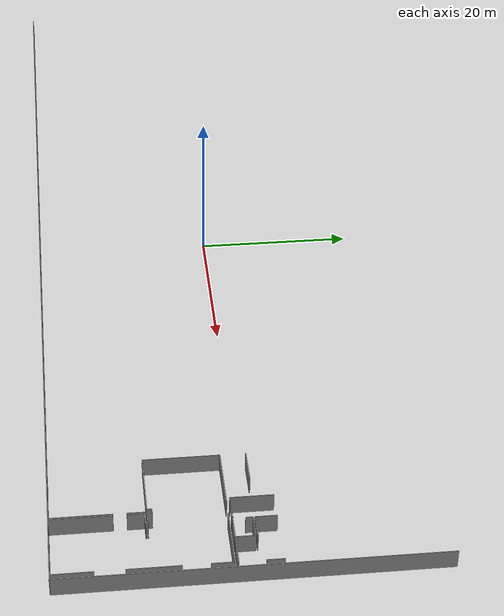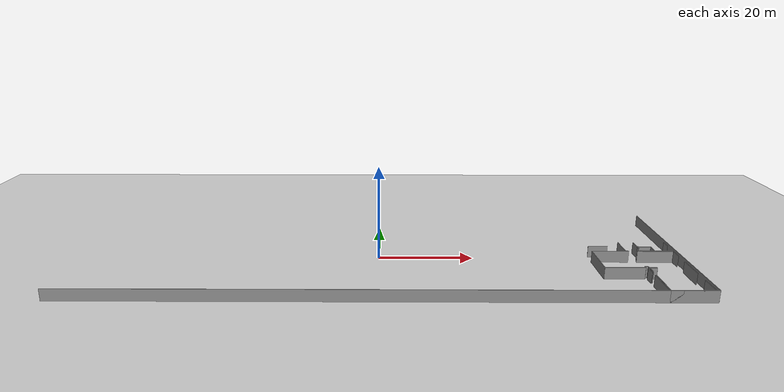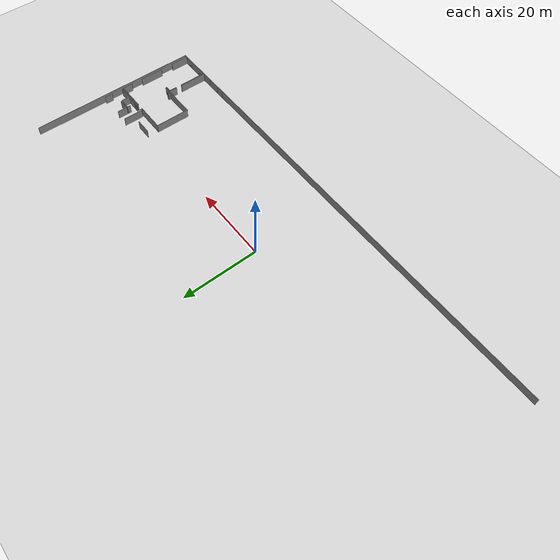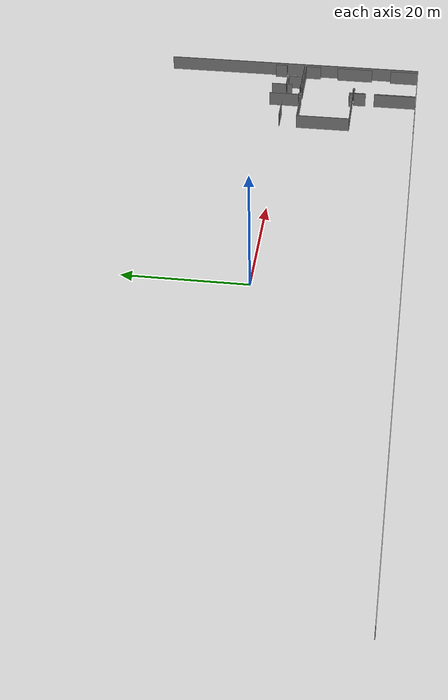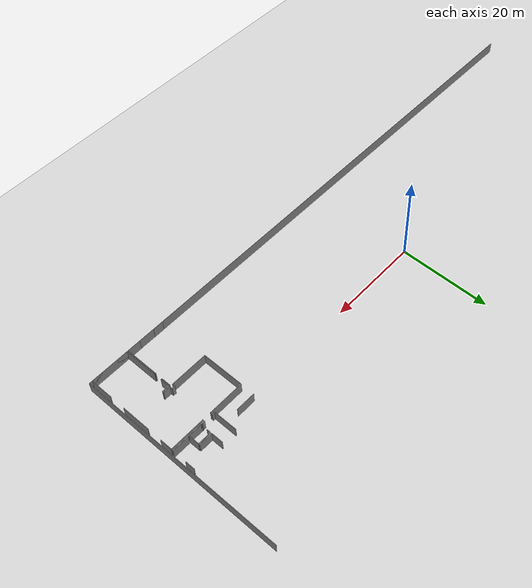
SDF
<sdf version="1.6">
 <world name="default">
  <model name="ground_plane">
   <static>1</static>
   <link name="link">
    <collision name="collision">
     <geometry><plane><normal>0 0 1</normal><size>100 100</size></plane></geometry>
     <surface><friction><ode><mu>100</mu><mu2>50</mu2></ode></friction></surface>
    </collision>
    <visual name="visual">
     <cast_shadows>0</cast_shadows>
     <geometry><plane><normal>0 0 1</normal><size>100 100</size></plane></geometry>
     <material>
      <script><uri>file://media/materials/scripts/gazebo.material</uri><name>Gazebo/Grey</name></script>
     </material>
    </visual>
   </link>
  </model>
  <model name="50010539">
   <static>1</static>
   <link name="Wall_471">
    <collision name="Wall_471_Collision">
     <geometry><box><size>4.1614796372 0.1 2.5</size></box></geometry>
     <pose>2.0807398186 0 1.25 0 0 0</pose>
    </collision>
    <visual name="Wall_471_Visual">
     <pose>2.0807398186 0 1.25 0 0 0</pose>
     <geometry><box><size>4.1614796372 0.1 2.5</size></box></geometry>
     <material>
      <script><uri>file://media/materials/scripts/gazebo.material</uri><name>Gazebo/Grey</name></script>
      <ambient>1 1 1 1</ambient>
     </material>
    </visual>
    <pose>111.972129773 -21.9492645004 0 0 0 3.14159265359</pose>
   </link>
   <link name="Wall_476">
    <collision name="Wall_476_Collision">
     <geometry><box><size>0.691039353675 0.1 2.5</size></box></geometry>
     <pose>0.345519676837 0 1.25 0 0 0</pose>
    </collision>
    <visual name="Wall_476_Visual">
     <pose>0.345519676837 0 1.25 0 0 0</pose>
     <geometry><box><size>0.691039353675 0.1 2.5</size></box></geometry>
     <material>
      <script><uri>file://media/materials/scripts/gazebo.material</uri><name>Gazebo/Grey</name></script>
      <ambient>1 1 1 1</ambient>
     </material>
    </visual>
    <pose>118.083509057 -24.6500342979 0 0 0 3.14159265359</pose>
   </link>
   <link name="Wall_477">
    <collision name="Wall_477_Collision">
     <geometry><box><size>0.595767383959 0.1 2.5</size></box></geometry>
     <pose>0.297883691979 0 1.25 0 0 0</pose>
    </collision>
    <visual name="Wall_477_Visual">
     <pose>0.297883691979 0 1.25 0 0 0</pose>
     <geometry><box><size>0.595767383959 0.1 2.5</size></box></geometry>
     <material>
      <script><uri>file://media/materials/scripts/gazebo.material</uri><name>Gazebo/Grey</name></script>
      <ambient>1 1 1 1</ambient>
     </material>
    </visual>
    <pose>115.583572572 -24.6500342979 0 0 0 3.14159265359</pose>
   </link>
   <link name="Wall_478">
    <collision name="Wall_478_Collision">
     <geometry><box><size>5.20566042529 0.1 2.5</size></box></geometry>
     <pose>2.60283021265 0 1.25 0 0 0</pose>
    </collision>
    <visual name="Wall_478_Visual">
     <pose>2.60283021265 0 1.25 0 0 0</pose>
     <geometry><box><size>5.20566042529 0.1 2.5</size></box></geometry>
     <material>
      <script><uri>file://media/materials/scripts/gazebo.material</uri><name>Gazebo/Grey</name></script>
      <ambient>1 1 1 1</ambient>
     </material>
    </visual>
    <pose>114.987805188 -24.6500342979 0 0 0 1.57079632679</pose>
   </link>
   <link name="Wall_481">
    <collision name="Wall_481_Collision">
     <geometry><box><size>0.104164020223 0.1 2.5</size></box></geometry>
     <pose>0.0520820101115 0 1.25 0 0 0</pose>
    </collision>
    <visual name="Wall_481_Visual">
     <pose>0.0520820101115 0 1.25 0 0 0</pose>
     <geometry><box><size>0.104164020223 0.1 2.5</size></box></geometry>
     <material>
      <script><uri>file://media/materials/scripts/gazebo.material</uri><name>Gazebo/Grey</name></script>
      <ambient>1 1 1 1</ambient>
     </material>
    </visual>
    <pose>118.060643784 -24.5484108635 0 0 0 -1.34948188445</pose>
   </link>
   <link name="Wall_482">
    <collision name="Wall_482_Collision">
     <geometry><box><size>2.8886461218 0.1 2.5</size></box></geometry>
     <pose>1.4443230609 0 1.25 0 0 0</pose>
    </collision>
    <visual name="Wall_482_Visual">
     <pose>1.4443230609 0 1.25 0 0 0</pose>
     <geometry><box><size>2.8886461218 0.1 2.5</size></box></geometry>
     <material>
      <script><uri>file://media/materials/scripts/gazebo.material</uri><name>Gazebo/Grey</name></script>
      <ambient>1 1 1 1</ambient>
     </material>
    </visual>
    <pose>121.194456442 -24.6528289424 0 0 0 3.14159265359</pose>
   </link>
   <link name="Wall_483">
    <collision name="Wall_483_Collision">
     <geometry><box><size>0.0768527222377 0.1 2.5</size></box></geometry>
     <pose>0.0384263611189 0 1.25 0 0 0</pose>
    </collision>
    <visual name="Wall_483_Visual">
     <pose>0.0384263611189 0 1.25 0 0 0</pose>
     <geometry><box><size>0.0768527222377 0.1 2.5</size></box></geometry>
     <material>
      <script><uri>file://media/materials/scripts/gazebo.material</uri><name>Gazebo/Grey</name></script>
      <ambient>1 1 1 1</ambient>
     </material>
    </visual>
    <pose>118.30581032 -24.6528289424 0 0 0 1.57079632679</pose>
   </link>
   <link name="Wall_484">
    <collision name="Wall_484_Collision">
     <geometry><box><size>0.884123878966 0.1 2.5</size></box></geometry>
     <pose>0.442061939483 0 1.25 0 0 0</pose>
    </collision>
    <visual name="Wall_484_Visual">
     <pose>0.442061939483 0 1.25 0 0 0</pose>
     <geometry><box><size>0.884123878966 0.1 2.5</size></box></geometry>
     <material>
      <script><uri>file://media/materials/scripts/gazebo.material</uri><name>Gazebo/Grey</name></script>
      <ambient>1 1 1 1</ambient>
     </material>
    </visual>
    <pose>118.30581032 -23.1700160057 0 0 0 1.57079632679</pose>
   </link>
   <link name="Wall_485">
    <collision name="Wall_485_Collision">
     <geometry><box><size>2.88356495008 0.1 2.5</size></box></geometry>
     <pose>1.44178247504 0 1.25 0 0 0</pose>
    </collision>
    <visual name="Wall_485_Visual">
     <pose>1.44178247504 0 1.25 0 0 0</pose>
     <geometry><box><size>2.88356495008 0.1 2.5</size></box></geometry>
     <material>
      <script><uri>file://media/materials/scripts/gazebo.material</uri><name>Gazebo/Grey</name></script>
      <ambient>1 1 1 1</ambient>
     </material>
    </visual>
    <pose>118.30581032 -22.2858921267 0 0 0 0.0</pose>
   </link>
   <link name="Wall_486">
    <collision name="Wall_486_Collision">
     <geometry><box><size>2.36694226957 0.1 2.5</size></box></geometry>
     <pose>1.18347113479 0 1.25 0 0 0</pose>
    </collision>
    <visual name="Wall_486_Visual">
     <pose>1.18347113479 0 1.25 0 0 0</pose>
     <geometry><box><size>2.36694226957 0.1 2.5</size></box></geometry>
     <material>
      <script><uri>file://media/materials/scripts/gazebo.material</uri><name>Gazebo/Grey</name></script>
      <ambient>1 1 1 1</ambient>
     </material>
    </visual>
    <pose>121.18937527 -22.2858921267 0 0 0 -1.56864960117</pose>
   </link>
   <link name="Wall_487">
    <collision name="Wall_487_Collision">
     <geometry><box><size>2.89880846523 0.1 2.5</size></box></geometry>
     <pose>1.44940423262 0 1.25 0 0 0</pose>
    </collision>
    <visual name="Wall_487_Visual">
     <pose>1.44940423262 0 1.25 0 0 0</pose>
     <geometry><box><size>2.89880846523 0.1 2.5</size></box></geometry>
     <material>
      <script><uri>file://media/materials/scripts/gazebo.material</uri><name>Gazebo/Grey</name></script>
      <ambient>1 1 1 1</ambient>
     </material>
    </visual>
    <pose>121.194456442 -22.0606691903 0 0 0 3.14159265359</pose>
   </link>
   <link name="Wall_488">
    <collision name="Wall_488_Collision">
     <geometry><box><size>2.60854653083 0.1 2.5</size></box></geometry>
     <pose>1.30427326542 0 1.25 0 0 0</pose>
    </collision>
    <visual name="Wall_488_Visual">
     <pose>1.30427326542 0 1.25 0 0 0</pose>
     <geometry><box><size>2.60854653083 0.1 2.5</size></box></geometry>
     <material>
      <script><uri>file://media/materials/scripts/gazebo.material</uri><name>Gazebo/Grey</name></script>
      <ambient>1 1 1 1</ambient>
     </material>
    </visual>
    <pose>118.295647976 -22.0606691903 0 0 0 1.57079632679</pose>
   </link>
   <link name="Wall_492">
    <collision name="Wall_492_Collision">
     <geometry><box><size>2.09674550951 0.1 2.5</size></box></geometry>
     <pose>1.04837275476 0 1.25 0 0 0</pose>
    </collision>
    <visual name="Wall_492_Visual">
     <pose>1.04837275476 0 1.25 0 0 0</pose>
     <geometry><box><size>2.09674550951 0.1 2.5</size></box></geometry>
     <material>
      <script><uri>file://media/materials/scripts/gazebo.material</uri><name>Gazebo/Grey</name></script>
      <ambient>1 1 1 1</ambient>
     </material>
    </visual>
    <pose>125.001524352 -21.5387058256 0 0 0 1.57079632679</pose>
   </link>
   <link name="Wall_495">
    <collision name="Wall_495_Collision">
     <geometry><box><size>3.60007801525 0.1 2.5</size></box></geometry>
     <pose>1.80003900762 0 1.25 0 0 0</pose>
    </collision>
    <visual name="Wall_495_Visual">
     <pose>1.80003900762 0 1.25 0 0 0</pose>
     <geometry><box><size>3.60007801525 0.1 2.5</size></box></geometry>
     <material>
      <script><uri>file://media/materials/scripts/gazebo.material</uri><name>Gazebo/Grey</name></script>
      <ambient>1 1 1 1</ambient>
     </material>
    </visual>
    <pose>121.401514189 -24.6427936282 0 0 0 -0.00613965468115</pose>
   </link>
   <link name="Wall_496">
    <collision name="Wall_496_Collision">
     <geometry><box><size>2.50755824293 0.1 2.5</size></box></geometry>
     <pose>1.25377912147 0 1.25 0 0 0</pose>
    </collision>
    <visual name="Wall_496_Visual">
     <pose>1.25377912147 0 1.25 0 0 0</pose>
     <geometry><box><size>2.50755824293 0.1 2.5</size></box></geometry>
     <material>
      <script><uri>file://media/materials/scripts/gazebo.material</uri><name>Gazebo/Grey</name></script>
      <ambient>1 1 1 1</ambient>
     </material>
    </visual>
    <pose>124.995172887 -45.6708416961 0 0 0 3.14159265359</pose>
   </link>
   <link name="Wall_497">
    <collision name="Wall_497_Collision">
     <geometry><box><size>2.39704275806 0.1 2.5</size></box></geometry>
     <pose>1.19852137903 0 1.25 0 0 0</pose>
    </collision>
    <visual name="Wall_497_Visual">
     <pose>1.19852137903 0 1.25 0 0 0</pose>
     <geometry><box><size>2.39704275806 0.1 2.5</size></box></geometry>
     <material>
      <script><uri>file://media/materials/scripts/gazebo.material</uri><name>Gazebo/Grey</name></script>
      <ambient>1 1 1 1</ambient>
     </material>
    </visual>
    <pose>119.004471431 -45.6708416961 0 0 0 3.14159265359</pose>
   </link>
   <link name="Wall_498">
    <collision name="Wall_498_Collision">
     <geometry><box><size>7.43438937019 0.1 2.5</size></box></geometry>
     <pose>3.71719468509 0 1.25 0 0 0</pose>
    </collision>
    <visual name="Wall_498_Visual">
     <pose>3.71719468509 0 1.25 0 0 0</pose>
     <geometry><box><size>7.43438937019 0.1 2.5</size></box></geometry>
     <material>
      <script><uri>file://media/materials/scripts/gazebo.material</uri><name>Gazebo/Grey</name></script>
      <ambient>1 1 1 1</ambient>
     </material>
    </visual>
    <pose>116.607428673 -45.6708416961 0 0 0 1.57079632679</pose>
   </link>
   <link name="Wall_499">
    <collision name="Wall_499_Collision">
     <geometry><box><size>2.07667488123 0.1 2.5</size></box></geometry>
     <pose>1.03833744061 0 1.25 0 0 0</pose>
    </collision>
    <visual name="Wall_499_Visual">
     <pose>1.03833744061 0 1.25 0 0 0</pose>
     <geometry><box><size>2.07667488123 0.1 2.5</size></box></geometry>
     <material>
      <script><uri>file://media/materials/scripts/gazebo.material</uri><name>Gazebo/Grey</name></script>
      <ambient>1 1 1 1</ambient>
     </material>
    </visual>
    <pose>116.607428673 -36.6352480882 0 0 0 1.57079632679</pose>
   </link>
   <link name="Wall_500">
    <collision name="Wall_500_Collision">
     <geometry><box><size>1.56119001042 0.1 2.5</size></box></geometry>
     <pose>0.780595005208 0 1.25 0 0 0</pose>
    </collision>
    <visual name="Wall_500_Visual">
     <pose>0.780595005208 0 1.25 0 0 0</pose>
     <geometry><box><size>1.56119001042 0.1 2.5</size></box></geometry>
     <material>
      <script><uri>file://media/materials/scripts/gazebo.material</uri><name>Gazebo/Grey</name></script>
      <ambient>1 1 1 1</ambient>
     </material>
    </visual>
    <pose>116.607428673 -34.558573207 0 0 0 0.0</pose>
   </link>
   <link name="Wall_501">
    <collision name="Wall_501_Collision">
     <geometry><box><size>0.260283021265 0.1 2.5</size></box></geometry>
     <pose>0.130141510632 0 1.25 0 0 0</pose>
    </collision>
    <visual name="Wall_501_Visual">
     <pose>0.130141510632 0 1.25 0 0 0</pose>
     <geometry><box><size>0.260283021265 0.1 2.5</size></box></geometry>
     <material>
      <script><uri>file://media/materials/scripts/gazebo.material</uri><name>Gazebo/Grey</name></script>
      <ambient>1 1 1 1</ambient>
     </material>
    </visual>
    <pose>118.168618683 -34.558573207 0 0 0 1.57079632679</pose>
   </link>
   <link name="Wall_502">
    <collision name="Wall_502_Collision">
     <geometry><box><size>1.5561088387 0.1 2.5</size></box></geometry>
     <pose>0.778054419349 0 1.25 0 0 0</pose>
    </collision>
    <visual name="Wall_502_Visual">
     <pose>0.778054419349 0 1.25 0 0 0</pose>
     <geometry><box><size>1.5561088387 0.1 2.5</size></box></geometry>
     <material>
      <script><uri>file://media/materials/scripts/gazebo.material</uri><name>Gazebo/Grey</name></script>
      <ambient>1 1 1 1</ambient>
     </material>
    </visual>
    <pose>118.168618683 -34.2982901857 0 0 0 3.14159265359</pose>
   </link>
   <link name="Wall_503">
    <collision name="Wall_503_Collision">
     <geometry><box><size>0.566804705165 0.1 2.5</size></box></geometry>
     <pose>0.283402352583 0 1.25 0 0 0</pose>
    </collision>
    <visual name="Wall_503_Visual">
     <pose>0.283402352583 0 1.25 0 0 0</pose>
     <geometry><box><size>0.566804705165 0.1 2.5</size></box></geometry>
     <material>
      <script><uri>file://media/materials/scripts/gazebo.material</uri><name>Gazebo/Grey</name></script>
      <ambient>1 1 1 1</ambient>
     </material>
    </visual>
    <pose>116.612509845 -34.2982901857 0 0 0 1.57079632679</pose>
   </link>
   <link name="Wall_504">
    <collision name="Wall_504_Collision">
     <geometry><box><size>0.644038515282 0.1 2.5</size></box></geometry>
     <pose>0.322019257641 0 1.25 0 0 0</pose>
    </collision>
    <visual name="Wall_504_Visual">
     <pose>0.322019257641 0 1.25 0 0 0</pose>
     <geometry><box><size>0.644038515282 0.1 2.5</size></box></geometry>
     <material>
      <script><uri>file://media/materials/scripts/gazebo.material</uri><name>Gazebo/Grey</name></script>
      <ambient>1 1 1 1</ambient>
     </material>
    </visual>
    <pose>116.612509845 -33.7314854806 0 0 0 3.14159265359</pose>
   </link>
   <link name="Wall_505">
    <collision name="Wall_505_Collision">
     <geometry><box><size>0.576331902137 0.1 2.5</size></box></geometry>
     <pose>0.288165951068 0 1.25 0 0 0</pose>
    </collision>
    <visual name="Wall_505_Visual">
     <pose>0.288165951068 0 1.25 0 0 0</pose>
     <geometry><box><size>0.576331902137 0.1 2.5</size></box></geometry>
     <material>
      <script><uri>file://media/materials/scripts/gazebo.material</uri><name>Gazebo/Grey</name></script>
      <ambient>1 1 1 1</ambient>
     </material>
    </visual>
    <pose>115.968471329 -33.7314854806 0 0 0 -1.57079632679</pose>
   </link>
   <link name="Wall_506">
    <collision name="Wall_506_Collision">
     <geometry><box><size>8.15146972892 0.1 2.5</size></box></geometry>
     <pose>4.07573486446 0 1.25 0 0 0</pose>
    </collision>
    <visual name="Wall_506_Visual">
     <pose>4.07573486446 0 1.25 0 0 0</pose>
     <geometry><box><size>8.15146972892 0.1 2.5</size></box></geometry>
     <material>
      <script><uri>file://media/materials/scripts/gazebo.material</uri><name>Gazebo/Grey</name></script>
      <ambient>1 1 1 1</ambient>
     </material>
    </visual>
    <pose>115.968471329 -34.3078173827 0 0 0 3.14159265359</pose>
   </link>
   <link name="Wall_507">
    <collision name="Wall_507_Collision">
     <geometry><box><size>9.25065420086 0.1 2.5</size></box></geometry>
     <pose>4.62532710043 0 1.25 0 0 0</pose>
    </collision>
    <visual name="Wall_507_Visual">
     <pose>4.62532710043 0 1.25 0 0 0</pose>
     <geometry><box><size>9.25065420086 0.1 2.5</size></box></geometry>
     <material>
      <script><uri>file://media/materials/scripts/gazebo.material</uri><name>Gazebo/Grey</name></script>
      <ambient>1 1 1 1</ambient>
     </material>
    </visual>
    <pose>107.817001601 -34.3078173827 0 0 0 1.57079632679</pose>
   </link>
   <link name="Wall_508">
    <collision name="Wall_508_Collision">
     <geometry><box><size>7.7551383349 0.1 2.5</size></box></geometry>
     <pose>3.87756916745 0 1.25 0 0 0</pose>
    </collision>
    <visual name="Wall_508_Visual">
     <pose>3.87756916745 0 1.25 0 0 0</pose>
     <geometry><box><size>7.7551383349 0.1 2.5</size></box></geometry>
     <material>
      <script><uri>file://media/materials/scripts/gazebo.material</uri><name>Gazebo/Grey</name></script>
      <ambient>1 1 1 1</ambient>
     </material>
    </visual>
    <pose>107.817001601 -25.0571631818 0 0 0 0.0</pose>
   </link>
   <link name="Wall_509">
    <collision name="Wall_509_Collision">
     <geometry><box><size>7.61032494093 0.1 2.5</size></box></geometry>
     <pose>3.80516247047 0 1.25 0 0 0</pose>
    </collision>
    <visual name="Wall_509_Visual">
     <pose>3.80516247047 0 1.25 0 0 0</pose>
     <geometry><box><size>7.61032494093 0.1 2.5</size></box></geometry>
     <material>
      <script><uri>file://media/materials/scripts/gazebo.material</uri><name>Gazebo/Grey</name></script>
      <ambient>1 1 1 1</ambient>
     </material>
    </visual>
    <pose>117.372145017 -25.0571631818 0 0 0 0.0</pose>
   </link>
   <link name="Wall_510">
    <collision name="Wall_510_Collision">
     <geometry><box><size>2.69988059246 0.1 2.5</size></box></geometry>
     <pose>1.34994029623 0 1.25 0 0 0</pose>
    </collision>
    <visual name="Wall_510_Visual">
     <pose>1.34994029623 0 1.25 0 0 0</pose>
     <geometry><box><size>2.69988059246 0.1 2.5</size></box></geometry>
     <material>
      <script><uri>file://media/materials/scripts/gazebo.material</uri><name>Gazebo/Grey</name></script>
      <ambient>1 1 1 1</ambient>
     </material>
    </visual>
    <pose>124.982469958 -25.0571631818 0 0 0 -1.57079632679</pose>
   </link>
   <link name="Wall_511">
    <collision name="Wall_511_Collision">
     <geometry><box><size>6.33799954269 0.1 2.5</size></box></geometry>
     <pose>3.16899977135 0 1.25 0 0 0</pose>
    </collision>
    <visual name="Wall_511_Visual">
     <pose>3.16899977135 0 1.25 0 0 0</pose>
     <geometry><box><size>6.33799954269 0.1 2.5</size></box></geometry>
     <material>
      <script><uri>file://media/materials/scripts/gazebo.material</uri><name>Gazebo/Grey</name></script>
      <ambient>1 1 1 1</ambient>
     </material>
    </visual>
    <pose>124.982469958 -30.9268057214 0 0 0 -1.57079632679</pose>
   </link>
   <link name="Wall_512">
    <collision name="Wall_512_Collision">
     <geometry><box><size>4.9502208159 0.1 2.5</size></box></geometry>
     <pose>2.47511040795 0 1.25 0 0 0</pose>
    </collision>
    <visual name="Wall_512_Visual">
     <pose>2.47511040795 0 1.25 0 0 0</pose>
     <geometry><box><size>4.9502208159 0.1 2.5</size></box></geometry>
     <material>
      <script><uri>file://media/materials/scripts/gazebo.material</uri><name>Gazebo/Grey</name></script>
      <ambient>1 1 1 1</ambient>
     </material>
    </visual>
    <pose>124.982469958 -40.7206371789 0 0 0 -1.56823019011</pose>
   </link>
   <link name="Wall_513">
    <collision name="Wall_513_Collision">
     <geometry><box><size>2.82767206118 0.1 2.5</size></box></geometry>
     <pose>1.41383603059 0 1.25 0 0 0</pose>
    </collision>
    <visual name="Wall_513_Visual">
     <pose>1.41383603059 0 1.25 0 0 0</pose>
     <geometry><box><size>2.82767206118 0.1 2.5</size></box></geometry>
     <material>
      <script><uri>file://media/materials/scripts/gazebo.material</uri><name>Gazebo/Grey</name></script>
      <ambient>1 1 1 1</ambient>
     </material>
    </visual>
    <pose>116.390208582 -45.6487385991 0 0 0 3.14159265359</pose>
   </link>
   <link name="Wall_514">
    <collision name="Wall_514_Collision">
     <geometry><box><size>2.32082518229 0.1 2.5</size></box></geometry>
     <pose>1.16041259114 0 1.25 0 0 0</pose>
    </collision>
    <visual name="Wall_514_Visual">
     <pose>1.16041259114 0 1.25 0 0 0</pose>
     <geometry><box><size>2.32082518229 0.1 2.5</size></box></geometry>
     <material>
      <script><uri>file://media/materials/scripts/gazebo.material</uri><name>Gazebo/Grey</name></script>
      <ambient>1 1 1 1</ambient>
     </material>
    </visual>
    <pose>110.116231803 -45.6487385991 0 0 0 3.14159265359</pose>
   </link>
   <link name="Wall_517">
    <collision name="Wall_517_Collision">
     <geometry><box><size>2.0987779782 0.1 2.5</size></box></geometry>
     <pose>1.0493889891 0 1.25 0 0 0</pose>
    </collision>
    <visual name="Wall_517_Visual">
     <pose>1.0493889891 0 1.25 0 0 0</pose>
     <geometry><box><size>2.0987779782 0.1 2.5</size></box></geometry>
     <material>
      <script><uri>file://media/materials/scripts/gazebo.material</uri><name>Gazebo/Grey</name></script>
      <ambient>1 1 1 1</ambient>
     </material>
    </visual>
    <pose>116.395289754 -34.5254185615 0 0 0 -1.57079632679</pose>
   </link>
   <link name="Wall_518">
    <collision name="Wall_518_Collision">
     <geometry><box><size>7.44493453546 0.1 2.5</size></box></geometry>
     <pose>3.72246726773 0 1.25 0 0 0</pose>
    </collision>
    <visual name="Wall_518_Visual">
     <pose>3.72246726773 0 1.25 0 0 0</pose>
     <geometry><box><size>7.44493453546 0.1 2.5</size></box></geometry>
     <material>
      <script><uri>file://media/materials/scripts/gazebo.material</uri><name>Gazebo/Grey</name></script>
      <ambient>1 1 1 1</ambient>
     </material>
    </visual>
    <pose>116.395289754 -38.2038057976 0 0 0 -1.57147882737</pose>
   </link>
   <link name="Wall_519">
    <collision name="Wall_519_Collision">
     <geometry><box><size>45.6708416961 0.1 2.5</size></box></geometry>
     <pose>22.835420848 0 1.25 0 0 0</pose>
    </collision>
    <visual name="Wall_519_Visual">
     <pose>22.835420848 0 1.25 0 0 0</pose>
     <geometry><box><size>45.6708416961 0.1 2.5</size></box></geometry>
     <material>
      <script><uri>file://media/materials/scripts/gazebo.material</uri><name>Gazebo/Grey</name></script>
      <ambient>1 1 1 1</ambient>
     </material>
    </visual>
    <pose>125.679860776 -45.6708416961 0 0 0 1.57079632679</pose>
   </link>
   <link name="Wall_520">
    <collision name="Wall_520_Collision">
     <geometry><box><size>125.679860776 0.1 2.5</size></box></geometry>
     <pose>62.8399303879 0 1.25 0 0 0</pose>
    </collision>
    <visual name="Wall_520_Visual">
     <pose>62.8399303879 0 1.25 0 0 0</pose>
     <geometry><box><size>125.679860776 0.1 2.5</size></box></geometry>
     <material>
      <script><uri>file://media/materials/scripts/gazebo.material</uri><name>Gazebo/Grey</name></script>
      <ambient>1 1 1 1</ambient>
     </material>
    </visual>
    <pose>125.679860776 -45.6708416961 0 0 0 3.14159265359</pose>
   </link>
   <pose>-62.8 22.8208416961 0 0 0 0</pose>
  </model>
 </world>
</sdf>
